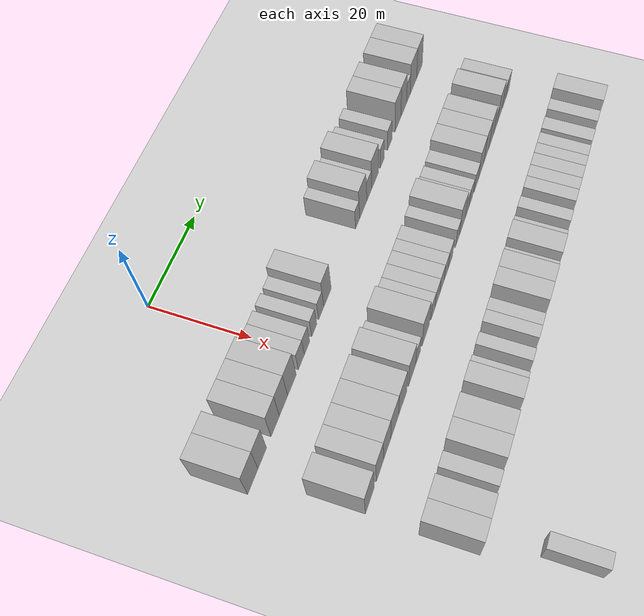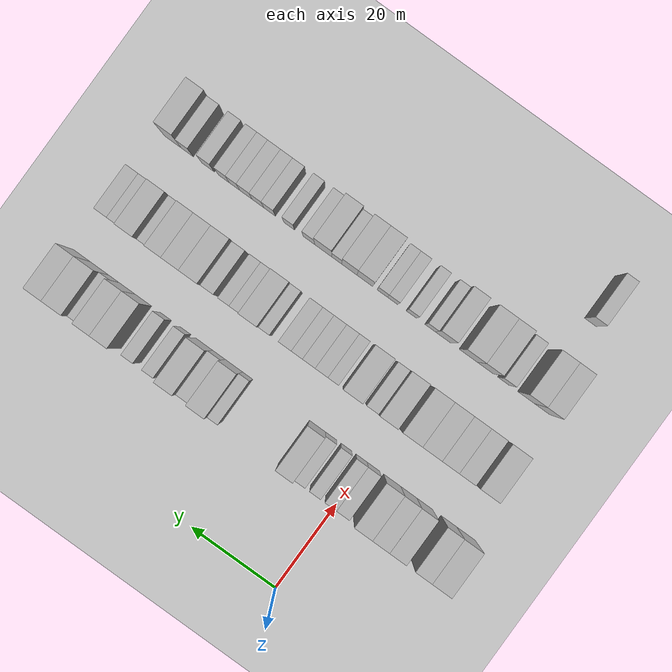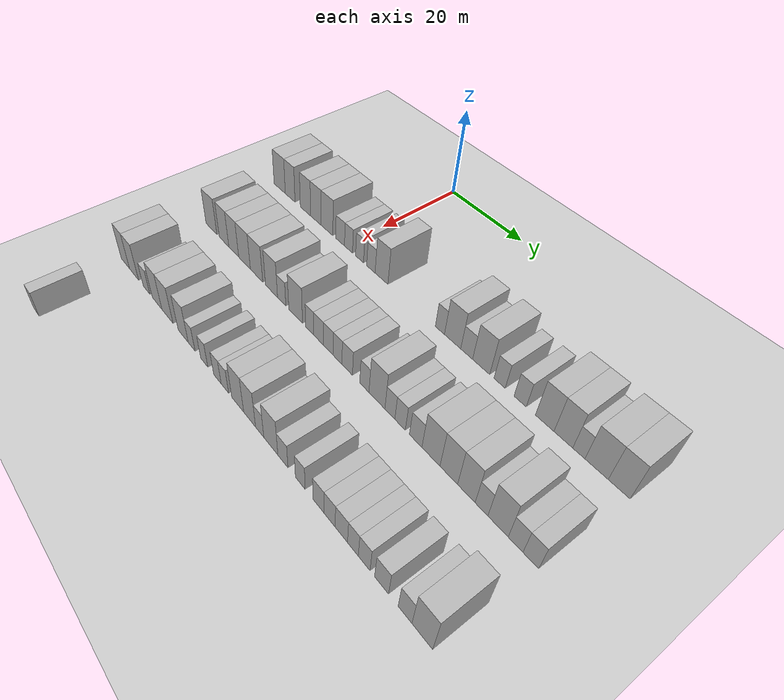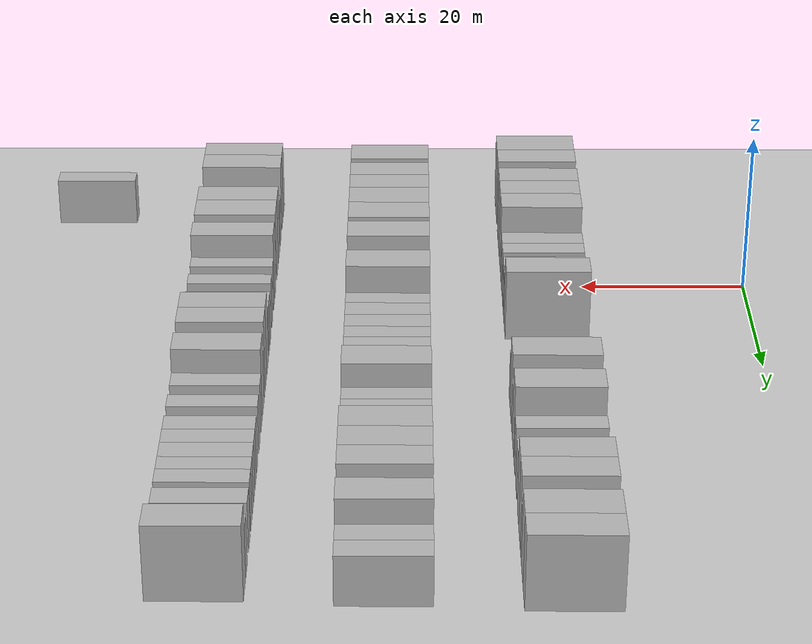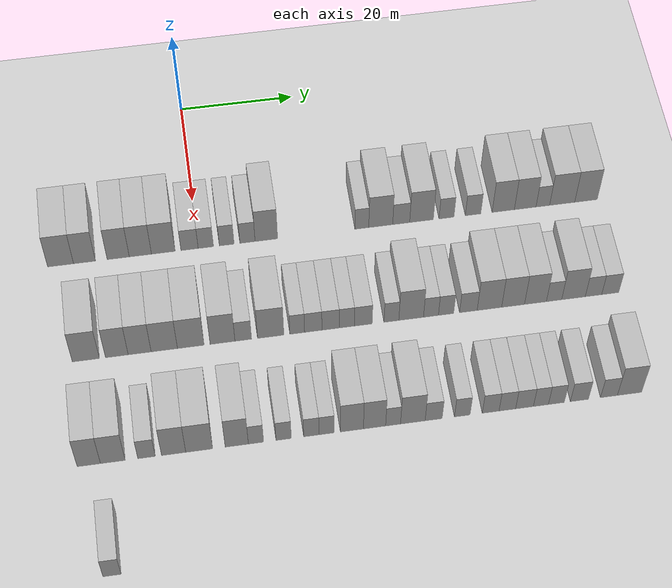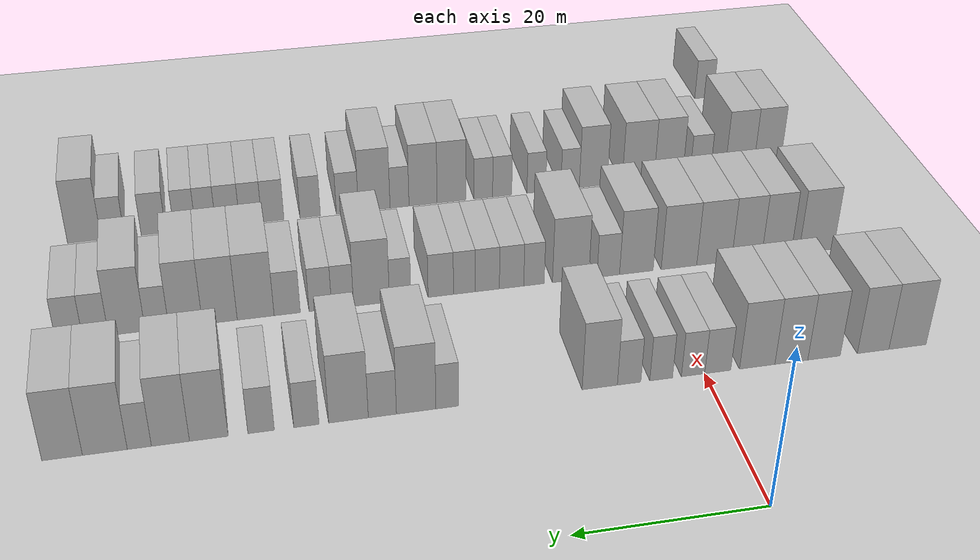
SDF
<sdf version="1.6">
 <world name="default">
  <include><name>ground_plane_1</name><uri>model://HANNAS_ground_plane</uri></include>
  <model name="building_82">
   <static>1</static>
   <pose>25.0000 -23.5042 0 0.000000 0.000000 0.000000</pose>
   <link name="link">
    <pose>0 0 4.50 0 0 0</pose>
    <collision name="collision"><geometry><box><size>10.0000 4.3973 9.0000</size></box></geometry></collision>
    <visual name="visual">
     <cast_shadows>0</cast_shadows>
     <geometry><box><size>10.0000 4.3973 9.0000</size></box></geometry>
     <material>
      <script>
       <uri>model://HANNAS_wall/materials/scripts</uri>
       <uri>model://HANNAS_wall/materials/textures</uri>
       <name>vrc/HANNAS_wall</name>
      </script>
     </material>
    </visual>
   </link>
  </model>
  <model name="building_83">
   <static>1</static>
   <pose>25.0000 -19.4495 0 0.000000 0.000000 0.000000</pose>
   <link name="link">
    <pose>0 0 4.50 0 0 0</pose>
    <collision name="collision"><geometry><box><size>10.0000 3.7122 9.0000</size></box></geometry></collision>
    <visual name="visual">
     <cast_shadows>0</cast_shadows>
     <geometry><box><size>10.0000 3.7122 9.0000</size></box></geometry>
     <material>
      <script>
       <uri>model://HANNAS_wall/materials/scripts</uri>
       <uri>model://HANNAS_wall/materials/textures</uri>
       <name>vrc/HANNAS_wall</name>
      </script>
     </material>
    </visual>
   </link>
  </model>
  <model name="building_84">
   <static>1</static>
   <pose>25.0000 -13.7093 0 0.000000 0.000000 0.000000</pose>
   <link name="link">
    <pose>0 0 4.50 0 0 0</pose>
    <collision name="collision"><geometry><box><size>10.0000 3.7682 9.0000</size></box></geometry></collision>
    <visual name="visual">
     <cast_shadows>0</cast_shadows>
     <geometry><box><size>10.0000 3.7682 9.0000</size></box></geometry>
     <material>
      <script>
       <uri>model://HANNAS_wall/materials/scripts</uri>
       <uri>model://HANNAS_wall/materials/textures</uri>
       <name>vrc/HANNAS_wall</name>
      </script>
     </material>
    </visual>
   </link>
  </model>
  <model name="building_85">
   <static>1</static>
   <pose>25.0000 -9.9267 0 0.000000 0.000000 0.000000</pose>
   <link name="link">
    <pose>0 0 4.50 0 0 0</pose>
    <collision name="collision"><geometry><box><size>10.0000 3.7969 9.0000</size></box></geometry></collision>
    <visual name="visual">
     <cast_shadows>0</cast_shadows>
     <geometry><box><size>10.0000 3.7969 9.0000</size></box></geometry>
     <material>
      <script>
       <uri>model://HANNAS_wall/materials/scripts</uri>
       <uri>model://HANNAS_wall/materials/textures</uri>
       <name>vrc/HANNAS_wall</name>
      </script>
     </material>
    </visual>
   </link>
  </model>
  <model name="building_86">
   <static>1</static>
   <pose>25.0000 -6.0050 0 0.000000 0.000000 0.000000</pose>
   <link name="link">
    <pose>0 0 4.50 0 0 0</pose>
    <collision name="collision"><geometry><box><size>10.0000 4.0466 9.0000</size></box></geometry></collision>
    <visual name="visual">
     <cast_shadows>0</cast_shadows>
     <geometry><box><size>10.0000 4.0466 9.0000</size></box></geometry>
     <material>
      <script>
       <uri>model://HANNAS_wall/materials/scripts</uri>
       <uri>model://HANNAS_wall/materials/textures</uri>
       <name>vrc/HANNAS_wall</name>
      </script>
     </material>
    </visual>
   </link>
  </model>
  <model name="building_87">
   <static>1</static>
   <pose>25.0000 -1.5067 0 0.000000 0.000000 0.000000</pose>
   <link name="link">
    <pose>0 0 3.00 0 0 0</pose>
    <collision name="collision"><geometry><box><size>10.0000 2.9499 6.0000</size></box></geometry></collision>
    <visual name="visual">
     <cast_shadows>0</cast_shadows>
     <geometry><box><size>10.0000 2.9499 6.0000</size></box></geometry>
     <material>
      <script>
       <uri>model://HANNAS_wall/materials/scripts</uri>
       <uri>model://HANNAS_wall/materials/textures</uri>
       <name>vrc/HANNAS_wall</name>
      </script>
     </material>
    </visual>
   </link>
  </model>
  <model name="building_88">
   <static>1</static>
   <pose>25.0000 1.2851 0 0.000000 0.000000 0.000000</pose>
   <link name="link">
    <pose>0 0 3.00 0 0 0</pose>
    <collision name="collision"><geometry><box><size>10.0000 2.6337 6.0000</size></box></geometry></collision>
    <visual name="visual">
     <cast_shadows>0</cast_shadows>
     <geometry><box><size>10.0000 2.6337 6.0000</size></box></geometry>
     <material>
      <script>
       <uri>model://HANNAS_wall/materials/scripts</uri>
       <uri>model://HANNAS_wall/materials/textures</uri>
       <name>vrc/HANNAS_wall</name>
      </script>
     </material>
    </visual>
   </link>
  </model>
  <model name="building_89">
   <static>1</static>
   <pose>25.0000 4.8728 0 0.000000 0.000000 0.000000</pose>
   <link name="link">
    <pose>0 0 3.00 0 0 0</pose>
    <collision name="collision"><geometry><box><size>10.0000 2.5417 6.0000</size></box></geometry></collision>
    <visual name="visual">
     <cast_shadows>0</cast_shadows>
     <geometry><box><size>10.0000 2.5417 6.0000</size></box></geometry>
     <material>
      <script>
       <uri>model://HANNAS_wall/materials/scripts</uri>
       <uri>model://HANNAS_wall/materials/textures</uri>
       <name>vrc/HANNAS_wall</name>
      </script>
     </material>
    </visual>
   </link>
  </model>
  <model name="building_90">
   <static>1</static>
   <pose>25.0000 8.4501 0 0.000000 0.000000 0.000000</pose>
   <link name="link">
    <pose>0 0 3.00 0 0 0</pose>
    <collision name="collision"><geometry><box><size>10.0000 2.6129 6.0000</size></box></geometry></collision>
    <visual name="visual">
     <cast_shadows>0</cast_shadows>
     <geometry><box><size>10.0000 2.6129 6.0000</size></box></geometry>
     <material>
      <script>
       <uri>model://HANNAS_wall/materials/scripts</uri>
       <uri>model://HANNAS_wall/materials/textures</uri>
       <name>vrc/HANNAS_wall</name>
      </script>
     </material>
    </visual>
   </link>
  </model>
  <model name="building_91">
   <static>1</static>
   <pose>25.0000 11.7018 0 0.000000 0.000000 0.000000</pose>
   <link name="link">
    <pose>0 0 4.50 0 0 0</pose>
    <collision name="collision"><geometry><box><size>10.0000 3.8906 9.0000</size></box></geometry></collision>
    <visual name="visual">
     <cast_shadows>0</cast_shadows>
     <geometry><box><size>10.0000 3.8906 9.0000</size></box></geometry>
     <material>
      <script>
       <uri>model://HANNAS_wall/materials/scripts</uri>
       <uri>model://HANNAS_wall/materials/textures</uri>
       <name>vrc/HANNAS_wall</name>
      </script>
     </material>
    </visual>
   </link>
  </model>
  <model name="building_92">
   <static>1</static>
   <pose>25.0000 28.2711 0 0.000000 0.000000 0.000000</pose>
   <link name="link">
    <pose>0 0 3.00 0 0 0</pose>
    <collision name="collision"><geometry><box><size>10.0000 2.4159 6.0000</size></box></geometry></collision>
    <visual name="visual">
     <cast_shadows>0</cast_shadows>
     <geometry><box><size>10.0000 2.4159 6.0000</size></box></geometry>
     <material>
      <script>
       <uri>model://HANNAS_wall/materials/scripts</uri>
       <uri>model://HANNAS_wall/materials/textures</uri>
       <name>vrc/HANNAS_wall</name>
      </script>
     </material>
    </visual>
   </link>
  </model>
  <model name="building_93">
   <static>1</static>
   <pose>25.0000 31.5718 0 0.000000 0.000000 0.000000</pose>
   <link name="link">
    <pose>0 0 4.50 0 0 0</pose>
    <collision name="collision"><geometry><box><size>10.0000 4.1856 9.0000</size></box></geometry></collision>
    <visual name="visual">
     <cast_shadows>0</cast_shadows>
     <geometry><box><size>10.0000 4.1856 9.0000</size></box></geometry>
     <material>
      <script>
       <uri>model://HANNAS_wall/materials/scripts</uri>
       <uri>model://HANNAS_wall/materials/textures</uri>
       <name>vrc/HANNAS_wall</name>
      </script>
     </material>
    </visual>
   </link>
  </model>
  <model name="building_94">
   <static>1</static>
   <pose>25.0000 35.1478 0 0.000000 0.000000 0.000000</pose>
   <link name="link">
    <pose>0 0 3.00 0 0 0</pose>
    <collision name="collision"><geometry><box><size>10.0000 2.9663 6.0000</size></box></geometry></collision>
    <visual name="visual">
     <cast_shadows>0</cast_shadows>
     <geometry><box><size>10.0000 2.9663 6.0000</size></box></geometry>
     <material>
      <script>
       <uri>model://HANNAS_wall/materials/scripts</uri>
       <uri>model://HANNAS_wall/materials/textures</uri>
       <name>vrc/HANNAS_wall</name>
      </script>
     </material>
    </visual>
   </link>
  </model>
  <model name="building_95">
   <static>1</static>
   <pose>25.0000 38.7033 0 0.000000 0.000000 0.000000</pose>
   <link name="link">
    <pose>0 0 4.50 0 0 0</pose>
    <collision name="collision"><geometry><box><size>10.0000 4.1447 9.0000</size></box></geometry></collision>
    <visual name="visual">
     <cast_shadows>0</cast_shadows>
     <geometry><box><size>10.0000 4.1447 9.0000</size></box></geometry>
     <material>
      <script>
       <uri>model://HANNAS_wall/materials/scripts</uri>
       <uri>model://HANNAS_wall/materials/textures</uri>
       <name>vrc/HANNAS_wall</name>
      </script>
     </material>
    </visual>
   </link>
  </model>
  <model name="building_96">
   <static>1</static>
   <pose>25.0000 43.0852 0 0.000000 0.000000 0.000000</pose>
   <link name="link">
    <pose>0 0 3.00 0 0 0</pose>
    <collision name="collision"><geometry><box><size>10.0000 2.6192 6.0000</size></box></geometry></collision>
    <visual name="visual">
     <cast_shadows>0</cast_shadows>
     <geometry><box><size>10.0000 2.6192 6.0000</size></box></geometry>
     <material>
      <script>
       <uri>model://HANNAS_wall/materials/scripts</uri>
       <uri>model://HANNAS_wall/materials/textures</uri>
       <name>vrc/HANNAS_wall</name>
      </script>
     </material>
    </visual>
   </link>
  </model>
  <model name="building_97">
   <static>1</static>
   <pose>25.0000 47.7562 0 0.000000 0.000000 0.000000</pose>
   <link name="link">
    <pose>0 0 3.00 0 0 0</pose>
    <collision name="collision"><geometry><box><size>10.0000 2.7227 6.0000</size></box></geometry></collision>
    <visual name="visual">
     <cast_shadows>0</cast_shadows>
     <geometry><box><size>10.0000 2.7227 6.0000</size></box></geometry>
     <material>
      <script>
       <uri>model://HANNAS_wall/materials/scripts</uri>
       <uri>model://HANNAS_wall/materials/textures</uri>
       <name>vrc/HANNAS_wall</name>
      </script>
     </material>
    </visual>
   </link>
  </model>
  <model name="building_98">
   <static>1</static>
   <pose>25.0000 53.0841 0 0.000000 0.000000 0.000000</pose>
   <link name="link">
    <pose>0 0 4.50 0 0 0</pose>
    <collision name="collision"><geometry><box><size>10.0000 3.9332 9.0000</size></box></geometry></collision>
    <visual name="visual">
     <cast_shadows>0</cast_shadows>
     <geometry><box><size>10.0000 3.9332 9.0000</size></box></geometry>
     <material>
      <script>
       <uri>model://HANNAS_wall/materials/scripts</uri>
       <uri>model://HANNAS_wall/materials/textures</uri>
       <name>vrc/HANNAS_wall</name>
      </script>
     </material>
    </visual>
   </link>
  </model>
  <model name="building_99">
   <static>1</static>
   <pose>25.0000 56.9649 0 0.000000 0.000000 0.000000</pose>
   <link name="link">
    <pose>0 0 4.50 0 0 0</pose>
    <collision name="collision"><geometry><box><size>10.0000 3.8284 9.0000</size></box></geometry></collision>
    <visual name="visual">
     <cast_shadows>0</cast_shadows>
     <geometry><box><size>10.0000 3.8284 9.0000</size></box></geometry>
     <material>
      <script>
       <uri>model://HANNAS_wall/materials/scripts</uri>
       <uri>model://HANNAS_wall/materials/textures</uri>
       <name>vrc/HANNAS_wall</name>
      </script>
     </material>
    </visual>
   </link>
  </model>
  <model name="building_100">
   <static>1</static>
   <pose>25.0000 60.0891 0 0.000000 0.000000 0.000000</pose>
   <link name="link">
    <pose>0 0 3.00 0 0 0</pose>
    <collision name="collision"><geometry><box><size>10.0000 2.4199 6.0000</size></box></geometry></collision>
    <visual name="visual">
     <cast_shadows>0</cast_shadows>
     <geometry><box><size>10.0000 2.4199 6.0000</size></box></geometry>
     <material>
      <script>
       <uri>model://HANNAS_wall/materials/scripts</uri>
       <uri>model://HANNAS_wall/materials/textures</uri>
       <name>vrc/HANNAS_wall</name>
      </script>
     </material>
    </visual>
   </link>
  </model>
  <model name="building_101">
   <static>1</static>
   <pose>25.0000 63.5254 0 0.000000 0.000000 0.000000</pose>
   <link name="link">
    <pose>0 0 4.50 0 0 0</pose>
    <collision name="collision"><geometry><box><size>10.0000 4.4528 9.0000</size></box></geometry></collision>
    <visual name="visual">
     <cast_shadows>0</cast_shadows>
     <geometry><box><size>10.0000 4.4528 9.0000</size></box></geometry>
     <material>
      <script>
       <uri>model://HANNAS_wall/materials/scripts</uri>
       <uri>model://HANNAS_wall/materials/textures</uri>
       <name>vrc/HANNAS_wall</name>
      </script>
     </material>
    </visual>
   </link>
  </model>
  <model name="building_102">
   <static>1</static>
   <pose>25.0000 67.7562 0 0.000000 0.000000 0.000000</pose>
   <link name="link">
    <pose>0 0 4.50 0 0 0</pose>
    <collision name="collision"><geometry><box><size>10.0000 4.0087 9.0000</size></box></geometry></collision>
    <visual name="visual">
     <cast_shadows>0</cast_shadows>
     <geometry><box><size>10.0000 4.0087 9.0000</size></box></geometry>
     <material>
      <script>
       <uri>model://HANNAS_wall/materials/scripts</uri>
       <uri>model://HANNAS_wall/materials/textures</uri>
       <name>vrc/HANNAS_wall</name>
      </script>
     </material>
    </visual>
   </link>
  </model>
  <model name="building_260">
   <static>1</static>
   <pose>44.0000 -20.5132 0 0.000000 0.000000 0.000000</pose>
   <link name="link">
    <pose>0 0 4.50 0 0 0</pose>
    <collision name="collision"><geometry><box><size>10.0000 4.4413 9.0000</size></box></geometry></collision>
    <visual name="visual">
     <cast_shadows>0</cast_shadows>
     <geometry><box><size>10.0000 4.4413 9.0000</size></box></geometry>
     <material>
      <script>
       <uri>model://HANNAS_wall/materials/scripts</uri>
       <uri>model://HANNAS_wall/materials/textures</uri>
       <name>vrc/HANNAS_wall</name>
      </script>
     </material>
    </visual>
   </link>
  </model>
  <model name="building_261">
   <static>1</static>
   <pose>44.0000 -15.4254 0 0.000000 0.000000 0.000000</pose>
   <link name="link">
    <pose>0 0 4.50 0 0 0</pose>
    <collision name="collision"><geometry><box><size>10.0000 3.7342 9.0000</size></box></geometry></collision>
    <visual name="visual">
     <cast_shadows>0</cast_shadows>
     <geometry><box><size>10.0000 3.7342 9.0000</size></box></geometry>
     <material>
      <script>
       <uri>model://HANNAS_wall/materials/scripts</uri>
       <uri>model://HANNAS_wall/materials/textures</uri>
       <name>vrc/HANNAS_wall</name>
      </script>
     </material>
    </visual>
   </link>
  </model>
  <model name="building_262">
   <static>1</static>
   <pose>44.0000 -11.6651 0 0.000000 0.000000 0.000000</pose>
   <link name="link">
    <pose>0 0 4.50 0 0 0</pose>
    <collision name="collision"><geometry><box><size>10.0000 3.7864 9.0000</size></box></geometry></collision>
    <visual name="visual">
     <cast_shadows>0</cast_shadows>
     <geometry><box><size>10.0000 3.7864 9.0000</size></box></geometry>
     <material>
      <script>
       <uri>model://HANNAS_wall/materials/scripts</uri>
       <uri>model://HANNAS_wall/materials/textures</uri>
       <name>vrc/HANNAS_wall</name>
      </script>
     </material>
    </visual>
   </link>
  </model>
  <model name="building_263">
   <static>1</static>
   <pose>44.0000 -7.5978 0 0.000000 0.000000 0.000000</pose>
   <link name="link">
    <pose>0 0 4.50 0 0 0</pose>
    <collision name="collision"><geometry><box><size>10.0000 4.3481 9.0000</size></box></geometry></collision>
    <visual name="visual">
     <cast_shadows>0</cast_shadows>
     <geometry><box><size>10.0000 4.3481 9.0000</size></box></geometry>
     <material>
      <script>
       <uri>model://HANNAS_wall/materials/scripts</uri>
       <uri>model://HANNAS_wall/materials/textures</uri>
       <name>vrc/HANNAS_wall</name>
      </script>
     </material>
    </visual>
   </link>
  </model>
  <model name="building_264">
   <static>1</static>
   <pose>44.0000 -3.2195 0 0.000000 0.000000 0.000000</pose>
   <link name="link">
    <pose>0 0 4.50 0 0 0</pose>
    <collision name="collision"><geometry><box><size>10.0000 4.4086 9.0000</size></box></geometry></collision>
    <visual name="visual">
     <cast_shadows>0</cast_shadows>
     <geometry><box><size>10.0000 4.4086 9.0000</size></box></geometry>
     <material>
      <script>
       <uri>model://HANNAS_wall/materials/scripts</uri>
       <uri>model://HANNAS_wall/materials/textures</uri>
       <name>vrc/HANNAS_wall</name>
      </script>
     </material>
    </visual>
   </link>
  </model>
  <model name="building_265">
   <static>1</static>
   <pose>44.0000 2.0481 0 0.000000 0.000000 0.000000</pose>
   <link name="link">
    <pose>0 0 4.50 0 0 0</pose>
    <collision name="collision"><geometry><box><size>10.0000 4.1265 9.0000</size></box></geometry></collision>
    <visual name="visual">
     <cast_shadows>0</cast_shadows>
     <geometry><box><size>10.0000 4.1265 9.0000</size></box></geometry>
     <material>
      <script>
       <uri>model://HANNAS_wall/materials/scripts</uri>
       <uri>model://HANNAS_wall/materials/textures</uri>
       <name>vrc/HANNAS_wall</name>
      </script>
     </material>
    </visual>
   </link>
  </model>
  <model name="building_266">
   <static>1</static>
   <pose>44.0000 5.4899 0 0.000000 0.000000 0.000000</pose>
   <link name="link">
    <pose>0 0 3.00 0 0 0</pose>
    <collision name="collision"><geometry><box><size>10.0000 2.7573 6.0000</size></box></geometry></collision>
    <visual name="visual">
     <cast_shadows>0</cast_shadows>
     <geometry><box><size>10.0000 2.7573 6.0000</size></box></geometry>
     <material>
      <script>
       <uri>model://HANNAS_wall/materials/scripts</uri>
       <uri>model://HANNAS_wall/materials/textures</uri>
       <name>vrc/HANNAS_wall</name>
      </script>
     </material>
    </visual>
   </link>
  </model>
  <model name="building_267">
   <static>1</static>
   <pose>44.0000 10.0637 0 0.000000 0.000000 0.000000</pose>
   <link name="link">
    <pose>0 0 4.50 0 0 0</pose>
    <collision name="collision"><geometry><box><size>10.0000 4.3903 9.0000</size></box></geometry></collision>
    <visual name="visual">
     <cast_shadows>0</cast_shadows>
     <geometry><box><size>10.0000 4.3903 9.0000</size></box></geometry>
     <material>
      <script>
       <uri>model://HANNAS_wall/materials/scripts</uri>
       <uri>model://HANNAS_wall/materials/textures</uri>
       <name>vrc/HANNAS_wall</name>
      </script>
     </material>
    </visual>
   </link>
  </model>
  <model name="building_268">
   <static>1</static>
   <pose>44.0000 14.4859 0 0.000000 0.000000 0.000000</pose>
   <link name="link">
    <pose>0 0 3.00 0 0 0</pose>
    <collision name="collision"><geometry><box><size>10.0000 2.4540 6.0000</size></box></geometry></collision>
    <visual name="visual">
     <cast_shadows>0</cast_shadows>
     <geometry><box><size>10.0000 2.4540 6.0000</size></box></geometry>
     <material>
      <script>
       <uri>model://HANNAS_wall/materials/scripts</uri>
       <uri>model://HANNAS_wall/materials/textures</uri>
       <name>vrc/HANNAS_wall</name>
      </script>
     </material>
    </visual>
   </link>
  </model>
  <model name="building_269">
   <static>1</static>
   <pose>44.0000 17.1686 0 0.000000 0.000000 0.000000</pose>
   <link name="link">
    <pose>0 0 3.00 0 0 0</pose>
    <collision name="collision"><geometry><box><size>10.0000 2.9115 6.0000</size></box></geometry></collision>
    <visual name="visual">
     <cast_shadows>0</cast_shadows>
     <geometry><box><size>10.0000 2.9115 6.0000</size></box></geometry>
     <material>
      <script>
       <uri>model://HANNAS_wall/materials/scripts</uri>
       <uri>model://HANNAS_wall/materials/textures</uri>
       <name>vrc/HANNAS_wall</name>
      </script>
     </material>
    </visual>
   </link>
  </model>
  <model name="building_270">
   <static>1</static>
   <pose>44.0000 20.0705 0 0.000000 0.000000 0.000000</pose>
   <link name="link">
    <pose>0 0 3.00 0 0 0</pose>
    <collision name="collision"><geometry><box><size>10.0000 2.8923 6.0000</size></box></geometry></collision>
    <visual name="visual">
     <cast_shadows>0</cast_shadows>
     <geometry><box><size>10.0000 2.8923 6.0000</size></box></geometry>
     <material>
      <script>
       <uri>model://HANNAS_wall/materials/scripts</uri>
       <uri>model://HANNAS_wall/materials/textures</uri>
       <name>vrc/HANNAS_wall</name>
      </script>
     </material>
    </visual>
   </link>
  </model>
  <model name="building_271">
   <static>1</static>
   <pose>44.0000 22.7929 0 0.000000 0.000000 0.000000</pose>
   <link name="link">
    <pose>0 0 3.00 0 0 0</pose>
    <collision name="collision"><geometry><box><size>10.0000 2.5526 6.0000</size></box></geometry></collision>
    <visual name="visual">
     <cast_shadows>0</cast_shadows>
     <geometry><box><size>10.0000 2.5526 6.0000</size></box></geometry>
     <material>
      <script>
       <uri>model://HANNAS_wall/materials/scripts</uri>
       <uri>model://HANNAS_wall/materials/textures</uri>
       <name>vrc/HANNAS_wall</name>
      </script>
     </material>
    </visual>
   </link>
  </model>
  <model name="building_272">
   <static>1</static>
   <pose>44.0000 25.5600 0 0.000000 0.000000 0.000000</pose>
   <link name="link">
    <pose>0 0 3.00 0 0 0</pose>
    <collision name="collision"><geometry><box><size>10.0000 2.9814 6.0000</size></box></geometry></collision>
    <visual name="visual">
     <cast_shadows>0</cast_shadows>
     <geometry><box><size>10.0000 2.9814 6.0000</size></box></geometry>
     <material>
      <script>
       <uri>model://HANNAS_wall/materials/scripts</uri>
       <uri>model://HANNAS_wall/materials/textures</uri>
       <name>vrc/HANNAS_wall</name>
      </script>
     </material>
    </visual>
   </link>
  </model>
  <model name="building_273">
   <static>1</static>
   <pose>44.0000 30.3019 0 0.000000 0.000000 0.000000</pose>
   <link name="link">
    <pose>0 0 3.00 0 0 0</pose>
    <collision name="collision"><geometry><box><size>10.0000 2.5026 6.0000</size></box></geometry></collision>
    <visual name="visual">
     <cast_shadows>0</cast_shadows>
     <geometry><box><size>10.0000 2.5026 6.0000</size></box></geometry>
     <material>
      <script>
       <uri>model://HANNAS_wall/materials/scripts</uri>
       <uri>model://HANNAS_wall/materials/textures</uri>
       <name>vrc/HANNAS_wall</name>
      </script>
     </material>
    </visual>
   </link>
  </model>
  <model name="building_274">
   <static>1</static>
   <pose>44.0000 33.6368 0 0.000000 0.000000 0.000000</pose>
   <link name="link">
    <pose>0 0 4.50 0 0 0</pose>
    <collision name="collision"><geometry><box><size>10.0000 4.1671 9.0000</size></box></geometry></collision>
    <visual name="visual">
     <cast_shadows>0</cast_shadows>
     <geometry><box><size>10.0000 4.1671 9.0000</size></box></geometry>
     <material>
      <script>
       <uri>model://HANNAS_wall/materials/scripts</uri>
       <uri>model://HANNAS_wall/materials/textures</uri>
       <name>vrc/HANNAS_wall</name>
      </script>
     </material>
    </visual>
   </link>
  </model>
  <model name="building_275">
   <static>1</static>
   <pose>44.0000 36.9826 0 0.000000 0.000000 0.000000</pose>
   <link name="link">
    <pose>0 0 3.00 0 0 0</pose>
    <collision name="collision"><geometry><box><size>10.0000 2.5246 6.0000</size></box></geometry></collision>
    <visual name="visual">
     <cast_shadows>0</cast_shadows>
     <geometry><box><size>10.0000 2.5246 6.0000</size></box></geometry>
     <material>
      <script>
       <uri>model://HANNAS_wall/materials/scripts</uri>
       <uri>model://HANNAS_wall/materials/textures</uri>
       <name>vrc/HANNAS_wall</name>
      </script>
     </material>
    </visual>
   </link>
  </model>
  <model name="building_276">
   <static>1</static>
   <pose>44.0000 39.5386 0 0.000000 0.000000 0.000000</pose>
   <link name="link">
    <pose>0 0 3.00 0 0 0</pose>
    <collision name="collision"><geometry><box><size>10.0000 2.5874 6.0000</size></box></geometry></collision>
    <visual name="visual">
     <cast_shadows>0</cast_shadows>
     <geometry><box><size>10.0000 2.5874 6.0000</size></box></geometry>
     <material>
      <script>
       <uri>model://HANNAS_wall/materials/scripts</uri>
       <uri>model://HANNAS_wall/materials/textures</uri>
       <name>vrc/HANNAS_wall</name>
      </script>
     </material>
    </visual>
   </link>
  </model>
  <model name="building_277">
   <static>1</static>
   <pose>44.0000 43.3240 0 0.000000 0.000000 0.000000</pose>
   <link name="link">
    <pose>0 0 3.00 0 0 0</pose>
    <collision name="collision"><geometry><box><size>10.0000 2.9833 6.0000</size></box></geometry></collision>
    <visual name="visual">
     <cast_shadows>0</cast_shadows>
     <geometry><box><size>10.0000 2.9833 6.0000</size></box></geometry>
     <material>
      <script>
       <uri>model://HANNAS_wall/materials/scripts</uri>
       <uri>model://HANNAS_wall/materials/textures</uri>
       <name>vrc/HANNAS_wall</name>
      </script>
     </material>
    </visual>
   </link>
  </model>
  <model name="building_278">
   <static>1</static>
   <pose>44.0000 46.8982 0 0.000000 0.000000 0.000000</pose>
   <link name="link">
    <pose>0 0 4.50 0 0 0</pose>
    <collision name="collision"><geometry><box><size>10.0000 4.1652 9.0000</size></box></geometry></collision>
    <visual name="visual">
     <cast_shadows>0</cast_shadows>
     <geometry><box><size>10.0000 4.1652 9.0000</size></box></geometry>
     <material>
      <script>
       <uri>model://HANNAS_wall/materials/scripts</uri>
       <uri>model://HANNAS_wall/materials/textures</uri>
       <name>vrc/HANNAS_wall</name>
      </script>
     </material>
    </visual>
   </link>
  </model>
  <model name="building_279">
   <static>1</static>
   <pose>44.0000 50.9303 0 0.000000 0.000000 0.000000</pose>
   <link name="link">
    <pose>0 0 4.50 0 0 0</pose>
    <collision name="collision"><geometry><box><size>10.0000 3.8989 9.0000</size></box></geometry></collision>
    <visual name="visual">
     <cast_shadows>0</cast_shadows>
     <geometry><box><size>10.0000 3.8989 9.0000</size></box></geometry>
     <material>
      <script>
       <uri>model://HANNAS_wall/materials/scripts</uri>
       <uri>model://HANNAS_wall/materials/textures</uri>
       <name>vrc/HANNAS_wall</name>
      </script>
     </material>
    </visual>
   </link>
  </model>
  <model name="building_280">
   <static>1</static>
   <pose>44.0000 54.7513 0 0.000000 0.000000 0.000000</pose>
   <link name="link">
    <pose>0 0 4.50 0 0 0</pose>
    <collision name="collision"><geometry><box><size>10.0000 3.7431 9.0000</size></box></geometry></collision>
    <visual name="visual">
     <cast_shadows>0</cast_shadows>
     <geometry><box><size>10.0000 3.7431 9.0000</size></box></geometry>
     <material>
      <script>
       <uri>model://HANNAS_wall/materials/scripts</uri>
       <uri>model://HANNAS_wall/materials/textures</uri>
       <name>vrc/HANNAS_wall</name>
      </script>
     </material>
    </visual>
   </link>
  </model>
  <model name="building_281">
   <static>1</static>
   <pose>44.0000 57.9338 0 0.000000 0.000000 0.000000</pose>
   <link name="link">
    <pose>0 0 3.00 0 0 0</pose>
    <collision name="collision"><geometry><box><size>10.0000 2.6218 6.0000</size></box></geometry></collision>
    <visual name="visual">
     <cast_shadows>0</cast_shadows>
     <geometry><box><size>10.0000 2.6218 6.0000</size></box></geometry>
     <material>
      <script>
       <uri>model://HANNAS_wall/materials/scripts</uri>
       <uri>model://HANNAS_wall/materials/textures</uri>
       <name>vrc/HANNAS_wall</name>
      </script>
     </material>
    </visual>
   </link>
  </model>
  <model name="building_282">
   <static>1</static>
   <pose>44.0000 61.2656 0 0.000000 0.000000 0.000000</pose>
   <link name="link">
    <pose>0 0 4.50 0 0 0</pose>
    <collision name="collision"><geometry><box><size>10.0000 4.0418 9.0000</size></box></geometry></collision>
    <visual name="visual">
     <cast_shadows>0</cast_shadows>
     <geometry><box><size>10.0000 4.0418 9.0000</size></box></geometry>
     <material>
      <script>
       <uri>model://HANNAS_wall/materials/scripts</uri>
       <uri>model://HANNAS_wall/materials/textures</uri>
       <name>vrc/HANNAS_wall</name>
      </script>
     </material>
    </visual>
   </link>
  </model>
  <model name="building_283">
   <static>1</static>
   <pose>44.0000 64.7013 0 0.000000 0.000000 0.000000</pose>
   <link name="link">
    <pose>0 0 3.00 0 0 0</pose>
    <collision name="collision"><geometry><box><size>10.0000 2.8297 6.0000</size></box></geometry></collision>
    <visual name="visual">
     <cast_shadows>0</cast_shadows>
     <geometry><box><size>10.0000 2.8297 6.0000</size></box></geometry>
     <material>
      <script>
       <uri>model://HANNAS_wall/materials/scripts</uri>
       <uri>model://HANNAS_wall/materials/textures</uri>
       <name>vrc/HANNAS_wall</name>
      </script>
     </material>
    </visual>
   </link>
  </model>
  <model name="building_284">
   <static>1</static>
   <pose>44.0000 67.5794 0 0.000000 0.000000 0.000000</pose>
   <link name="link">
    <pose>0 0 3.00 0 0 0</pose>
    <collision name="collision"><geometry><box><size>10.0000 2.9266 6.0000</size></box></geometry></collision>
    <visual name="visual">
     <cast_shadows>0</cast_shadows>
     <geometry><box><size>10.0000 2.9266 6.0000</size></box></geometry>
     <material>
      <script>
       <uri>model://HANNAS_wall/materials/scripts</uri>
       <uri>model://HANNAS_wall/materials/textures</uri>
       <name>vrc/HANNAS_wall</name>
      </script>
     </material>
    </visual>
   </link>
  </model>
  <model name="building_437">
   <static>1</static>
   <pose>63.0000 -21.3307 0 0.000000 0.000000 0.000000</pose>
   <link name="link">
    <pose>0 0 4.50 0 0 0</pose>
    <collision name="collision"><geometry><box><size>10.0000 3.6834 9.0000</size></box></geometry></collision>
    <visual name="visual">
     <cast_shadows>0</cast_shadows>
     <geometry><box><size>10.0000 3.6834 9.0000</size></box></geometry>
     <material>
      <script>
       <uri>model://HANNAS_wall/materials/scripts</uri>
       <uri>model://HANNAS_wall/materials/textures</uri>
       <name>vrc/HANNAS_wall</name>
      </script>
     </material>
    </visual>
   </link>
  </model>
  <model name="building_438">
   <static>1</static>
   <pose>63.0000 -17.5296 0 0.000000 0.000000 0.000000</pose>
   <link name="link">
    <pose>0 0 4.50 0 0 0</pose>
    <collision name="collision"><geometry><box><size>10.0000 3.9188 9.0000</size></box></geometry></collision>
    <visual name="visual">
     <cast_shadows>0</cast_shadows>
     <geometry><box><size>10.0000 3.9188 9.0000</size></box></geometry>
     <material>
      <script>
       <uri>model://HANNAS_wall/materials/scripts</uri>
       <uri>model://HANNAS_wall/materials/textures</uri>
       <name>vrc/HANNAS_wall</name>
      </script>
     </material>
    </visual>
   </link>
  </model>
  <model name="building_439">
   <static>1</static>
   <pose>63.0000 -12.1858 0 0.000000 0.000000 0.000000</pose>
   <link name="link">
    <pose>0 0 3.00 0 0 0</pose>
    <collision name="collision"><geometry><box><size>10.0000 2.7690 6.0000</size></box></geometry></collision>
    <visual name="visual">
     <cast_shadows>0</cast_shadows>
     <geometry><box><size>10.0000 2.7690 6.0000</size></box></geometry>
     <material>
      <script>
       <uri>model://HANNAS_wall/materials/scripts</uri>
       <uri>model://HANNAS_wall/materials/textures</uri>
       <name>vrc/HANNAS_wall</name>
      </script>
     </material>
    </visual>
   </link>
  </model>
  <model name="building_440">
   <static>1</static>
   <pose>63.0000 -7.8694 0 0.000000 0.000000 0.000000</pose>
   <link name="link">
    <pose>0 0 4.50 0 0 0</pose>
    <collision name="collision"><geometry><box><size>10.0000 3.8638 9.0000</size></box></geometry></collision>
    <visual name="visual">
     <cast_shadows>0</cast_shadows>
     <geometry><box><size>10.0000 3.8638 9.0000</size></box></geometry>
     <material>
      <script>
       <uri>model://HANNAS_wall/materials/scripts</uri>
       <uri>model://HANNAS_wall/materials/textures</uri>
       <name>vrc/HANNAS_wall</name>
      </script>
     </material>
    </visual>
   </link>
  </model>
  <model name="building_441">
   <static>1</static>
   <pose>63.0000 -3.7908 0 0.000000 0.000000 0.000000</pose>
   <link name="link">
    <pose>0 0 4.50 0 0 0</pose>
    <collision name="collision"><geometry><box><size>10.0000 4.2935 9.0000</size></box></geometry></collision>
    <visual name="visual">
     <cast_shadows>0</cast_shadows>
     <geometry><box><size>10.0000 4.2935 9.0000</size></box></geometry>
     <material>
      <script>
       <uri>model://HANNAS_wall/materials/scripts</uri>
       <uri>model://HANNAS_wall/materials/textures</uri>
       <name>vrc/HANNAS_wall</name>
      </script>
     </material>
    </visual>
   </link>
  </model>
  <model name="building_442">
   <static>1</static>
   <pose>63.0000 2.2108 0 0.000000 0.000000 0.000000</pose>
   <link name="link">
    <pose>0 0 4.50 0 0 0</pose>
    <collision name="collision"><geometry><box><size>10.0000 3.7097 9.0000</size></box></geometry></collision>
    <visual name="visual">
     <cast_shadows>0</cast_shadows>
     <geometry><box><size>10.0000 3.7097 9.0000</size></box></geometry>
     <material>
      <script>
       <uri>model://HANNAS_wall/materials/scripts</uri>
       <uri>model://HANNAS_wall/materials/textures</uri>
       <name>vrc/HANNAS_wall</name>
      </script>
     </material>
    </visual>
   </link>
  </model>
  <model name="building_443">
   <static>1</static>
   <pose>63.0000 5.2895 0 0.000000 0.000000 0.000000</pose>
   <link name="link">
    <pose>0 0 3.00 0 0 0</pose>
    <collision name="collision"><geometry><box><size>10.0000 2.4479 6.0000</size></box></geometry></collision>
    <visual name="visual">
     <cast_shadows>0</cast_shadows>
     <geometry><box><size>10.0000 2.4479 6.0000</size></box></geometry>
     <material>
      <script>
       <uri>model://HANNAS_wall/materials/scripts</uri>
       <uri>model://HANNAS_wall/materials/textures</uri>
       <name>vrc/HANNAS_wall</name>
      </script>
     </material>
    </visual>
   </link>
  </model>
  <model name="building_444">
   <static>1</static>
   <pose>63.0000 9.7408 0 0.000000 0.000000 0.000000</pose>
   <link name="link">
    <pose>0 0 3.00 0 0 0</pose>
    <collision name="collision"><geometry><box><size>10.0000 2.4546 6.0000</size></box></geometry></collision>
    <visual name="visual">
     <cast_shadows>0</cast_shadows>
     <geometry><box><size>10.0000 2.4546 6.0000</size></box></geometry>
     <material>
      <script>
       <uri>model://HANNAS_wall/materials/scripts</uri>
       <uri>model://HANNAS_wall/materials/textures</uri>
       <name>vrc/HANNAS_wall</name>
      </script>
     </material>
    </visual>
   </link>
  </model>
  <model name="building_445">
   <static>1</static>
   <pose>63.0000 14.2104 0 0.000000 0.000000 0.000000</pose>
   <link name="link">
    <pose>0 0 3.00 0 0 0</pose>
    <collision name="collision"><geometry><box><size>10.0000 2.4847 6.0000</size></box></geometry></collision>
    <visual name="visual">
     <cast_shadows>0</cast_shadows>
     <geometry><box><size>10.0000 2.4847 6.0000</size></box></geometry>
     <material>
      <script>
       <uri>model://HANNAS_wall/materials/scripts</uri>
       <uri>model://HANNAS_wall/materials/textures</uri>
       <name>vrc/HANNAS_wall</name>
      </script>
     </material>
    </visual>
   </link>
  </model>
  <model name="building_446">
   <static>1</static>
   <pose>63.0000 16.6710 0 0.000000 0.000000 0.000000</pose>
   <link name="link">
    <pose>0 0 3.00 0 0 0</pose>
    <collision name="collision"><geometry><box><size>10.0000 2.4364 6.0000</size></box></geometry></collision>
    <visual name="visual">
     <cast_shadows>0</cast_shadows>
     <geometry><box><size>10.0000 2.4364 6.0000</size></box></geometry>
     <material>
      <script>
       <uri>model://HANNAS_wall/materials/scripts</uri>
       <uri>model://HANNAS_wall/materials/textures</uri>
       <name>vrc/HANNAS_wall</name>
      </script>
     </material>
    </visual>
   </link>
  </model>
  <model name="building_447">
   <static>1</static>
   <pose>63.0000 20.7562 0 0.000000 0.000000 0.000000</pose>
   <link name="link">
    <pose>0 0 4.50 0 0 0</pose>
    <collision name="collision"><geometry><box><size>10.0000 3.7340 9.0000</size></box></geometry></collision>
    <visual name="visual">
     <cast_shadows>0</cast_shadows>
     <geometry><box><size>10.0000 3.7340 9.0000</size></box></geometry>
     <material>
      <script>
       <uri>model://HANNAS_wall/materials/scripts</uri>
       <uri>model://HANNAS_wall/materials/textures</uri>
       <name>vrc/HANNAS_wall</name>
      </script>
     </material>
    </visual>
   </link>
  </model>
  <model name="building_448">
   <static>1</static>
   <pose>63.0000 24.4252 0 0.000000 0.000000 0.000000</pose>
   <link name="link">
    <pose>0 0 4.50 0 0 0</pose>
    <collision name="collision"><geometry><box><size>10.0000 3.6041 9.0000</size></box></geometry></collision>
    <visual name="visual">
     <cast_shadows>0</cast_shadows>
     <geometry><box><size>10.0000 3.6041 9.0000</size></box></geometry>
     <material>
      <script>
       <uri>model://HANNAS_wall/materials/scripts</uri>
       <uri>model://HANNAS_wall/materials/textures</uri>
       <name>vrc/HANNAS_wall</name>
      </script>
     </material>
    </visual>
   </link>
  </model>
  <model name="building_449">
   <static>1</static>
   <pose>63.0000 27.4356 0 0.000000 0.000000 0.000000</pose>
   <link name="link">
    <pose>0 0 3.00 0 0 0</pose>
    <collision name="collision"><geometry><box><size>10.0000 2.4165 6.0000</size></box></geometry></collision>
    <visual name="visual">
     <cast_shadows>0</cast_shadows>
     <geometry><box><size>10.0000 2.4165 6.0000</size></box></geometry>
     <material>
      <script>
       <uri>model://HANNAS_wall/materials/scripts</uri>
       <uri>model://HANNAS_wall/materials/textures</uri>
       <name>vrc/HANNAS_wall</name>
      </script>
     </material>
    </visual>
   </link>
  </model>
  <model name="building_450">
   <static>1</static>
   <pose>63.0000 30.6483 0 0.000000 0.000000 0.000000</pose>
   <link name="link">
    <pose>0 0 4.50 0 0 0</pose>
    <collision name="collision"><geometry><box><size>10.0000 4.0090 9.0000</size></box></geometry></collision>
    <visual name="visual">
     <cast_shadows>0</cast_shadows>
     <geometry><box><size>10.0000 4.0090 9.0000</size></box></geometry>
     <material>
      <script>
       <uri>model://HANNAS_wall/materials/scripts</uri>
       <uri>model://HANNAS_wall/materials/textures</uri>
       <name>vrc/HANNAS_wall</name>
      </script>
     </material>
    </visual>
   </link>
  </model>
  <model name="building_451">
   <static>1</static>
   <pose>63.0000 34.0429 0 0.000000 0.000000 0.000000</pose>
   <link name="link">
    <pose>0 0 3.00 0 0 0</pose>
    <collision name="collision"><geometry><box><size>10.0000 2.7802 6.0000</size></box></geometry></collision>
    <visual name="visual">
     <cast_shadows>0</cast_shadows>
     <geometry><box><size>10.0000 2.7802 6.0000</size></box></geometry>
     <material>
      <script>
       <uri>model://HANNAS_wall/materials/scripts</uri>
       <uri>model://HANNAS_wall/materials/textures</uri>
       <name>vrc/HANNAS_wall</name>
      </script>
     </material>
    </visual>
   </link>
  </model>
  <model name="building_452">
   <static>1</static>
   <pose>63.0000 38.7100 0 0.000000 0.000000 0.000000</pose>
   <link name="link">
    <pose>0 0 3.00 0 0 0</pose>
    <collision name="collision"><geometry><box><size>10.0000 2.5540 6.0000</size></box></geometry></collision>
    <visual name="visual">
     <cast_shadows>0</cast_shadows>
     <geometry><box><size>10.0000 2.5540 6.0000</size></box></geometry>
     <material>
      <script>
       <uri>model://HANNAS_wall/materials/scripts</uri>
       <uri>model://HANNAS_wall/materials/textures</uri>
       <name>vrc/HANNAS_wall</name>
      </script>
     </material>
    </visual>
   </link>
  </model>
  <model name="building_453">
   <static>1</static>
   <pose>63.0000 43.3627 0 0.000000 0.000000 0.000000</pose>
   <link name="link">
    <pose>0 0 3.00 0 0 0</pose>
    <collision name="collision"><geometry><box><size>10.0000 2.7514 6.0000</size></box></geometry></collision>
    <visual name="visual">
     <cast_shadows>0</cast_shadows>
     <geometry><box><size>10.0000 2.7514 6.0000</size></box></geometry>
     <material>
      <script>
       <uri>model://HANNAS_wall/materials/scripts</uri>
       <uri>model://HANNAS_wall/materials/textures</uri>
       <name>vrc/HANNAS_wall</name>
      </script>
     </material>
    </visual>
   </link>
  </model>
  <model name="building_454">
   <static>1</static>
   <pose>63.0000 46.1010 0 0.000000 0.000000 0.000000</pose>
   <link name="link">
    <pose>0 0 3.00 0 0 0</pose>
    <collision name="collision"><geometry><box><size>10.0000 2.7253 6.0000</size></box></geometry></collision>
    <visual name="visual">
     <cast_shadows>0</cast_shadows>
     <geometry><box><size>10.0000 2.7253 6.0000</size></box></geometry>
     <material>
      <script>
       <uri>model://HANNAS_wall/materials/scripts</uri>
       <uri>model://HANNAS_wall/materials/textures</uri>
       <name>vrc/HANNAS_wall</name>
      </script>
     </material>
    </visual>
   </link>
  </model>
  <model name="building_455">
   <static>1</static>
   <pose>63.0000 48.9304 0 0.000000 0.000000 0.000000</pose>
   <link name="link">
    <pose>0 0 3.00 0 0 0</pose>
    <collision name="collision"><geometry><box><size>10.0000 2.9334 6.0000</size></box></geometry></collision>
    <visual name="visual">
     <cast_shadows>0</cast_shadows>
     <geometry><box><size>10.0000 2.9334 6.0000</size></box></geometry>
     <material>
      <script>
       <uri>model://HANNAS_wall/materials/scripts</uri>
       <uri>model://HANNAS_wall/materials/textures</uri>
       <name>vrc/HANNAS_wall</name>
      </script>
     </material>
    </visual>
   </link>
  </model>
  <model name="building_456">
   <static>1</static>
   <pose>63.0000 51.6324 0 0.000000 0.000000 0.000000</pose>
   <link name="link">
    <pose>0 0 3.00 0 0 0</pose>
    <collision name="collision"><geometry><box><size>10.0000 2.4707 6.0000</size></box></geometry></collision>
    <visual name="visual">
     <cast_shadows>0</cast_shadows>
     <geometry><box><size>10.0000 2.4707 6.0000</size></box></geometry>
     <material>
      <script>
       <uri>model://HANNAS_wall/materials/scripts</uri>
       <uri>model://HANNAS_wall/materials/textures</uri>
       <name>vrc/HANNAS_wall</name>
      </script>
     </material>
    </visual>
   </link>
  </model>
  <model name="building_457">
   <static>1</static>
   <pose>63.0000 54.1768 0 0.000000 0.000000 0.000000</pose>
   <link name="link">
    <pose>0 0 3.00 0 0 0</pose>
    <collision name="collision"><geometry><box><size>10.0000 2.6180 6.0000</size></box></geometry></collision>
    <visual name="visual">
     <cast_shadows>0</cast_shadows>
     <geometry><box><size>10.0000 2.6180 6.0000</size></box></geometry>
     <material>
      <script>
       <uri>model://HANNAS_wall/materials/scripts</uri>
       <uri>model://HANNAS_wall/materials/textures</uri>
       <name>vrc/HANNAS_wall</name>
      </script>
     </material>
    </visual>
   </link>
  </model>
  <model name="building_458">
   <static>1</static>
   <pose>63.0000 57.9814 0 0.000000 0.000000 0.000000</pose>
   <link name="link">
    <pose>0 0 3.00 0 0 0</pose>
    <collision name="collision"><geometry><box><size>10.0000 2.9911 6.0000</size></box></geometry></collision>
    <visual name="visual">
     <cast_shadows>0</cast_shadows>
     <geometry><box><size>10.0000 2.9911 6.0000</size></box></geometry>
     <material>
      <script>
       <uri>model://HANNAS_wall/materials/scripts</uri>
       <uri>model://HANNAS_wall/materials/textures</uri>
       <name>vrc/HANNAS_wall</name>
      </script>
     </material>
    </visual>
   </link>
  </model>
  <model name="building_459">
   <static>1</static>
   <pose>63.0000 62.8767 0 0.000000 0.000000 0.000000</pose>
   <link name="link">
    <pose>0 0 3.00 0 0 0</pose>
    <collision name="collision"><geometry><box><size>10.0000 2.7997 6.0000</size></box></geometry></collision>
    <visual name="visual">
     <cast_shadows>0</cast_shadows>
     <geometry><box><size>10.0000 2.7997 6.0000</size></box></geometry>
     <material>
      <script>
       <uri>model://HANNAS_wall/materials/scripts</uri>
       <uri>model://HANNAS_wall/materials/textures</uri>
       <name>vrc/HANNAS_wall</name>
      </script>
     </material>
    </visual>
   </link>
  </model>
  <model name="building_460">
   <static>1</static>
   <pose>63.0000 66.2877 0 0.000000 0.000000 0.000000</pose>
   <link name="link">
    <pose>0 0 4.50 0 0 0</pose>
    <collision name="collision"><geometry><box><size>10.0000 4.0223 9.0000</size></box></geometry></collision>
    <visual name="visual">
     <cast_shadows>0</cast_shadows>
     <geometry><box><size>10.0000 4.0223 9.0000</size></box></geometry>
     <material>
      <script>
       <uri>model://HANNAS_wall/materials/scripts</uri>
       <uri>model://HANNAS_wall/materials/textures</uri>
       <name>vrc/HANNAS_wall</name>
      </script>
     </material>
    </visual>
   </link>
  </model>
  <model name="building_617">
   <static>1</static>
   <pose>82.0000 -19.1047 0 0.000000 0.000000 0.000000</pose>
   <link name="link">
    <pose>0 0 3.00 0 0 0</pose>
    <collision name="collision"><geometry><box><size>10.0000 2.7617 6.0000</size></box></geometry></collision>
    <visual name="visual">
     <cast_shadows>0</cast_shadows>
     <geometry><box><size>10.0000 2.7617 6.0000</size></box></geometry>
     <material>
      <script>
       <uri>model://HANNAS_wall/materials/scripts</uri>
       <uri>model://HANNAS_wall/materials/textures</uri>
       <name>vrc/HANNAS_wall</name>
      </script>
     </material>
    </visual>
   </link>
  </model>
 </world>
</sdf>
